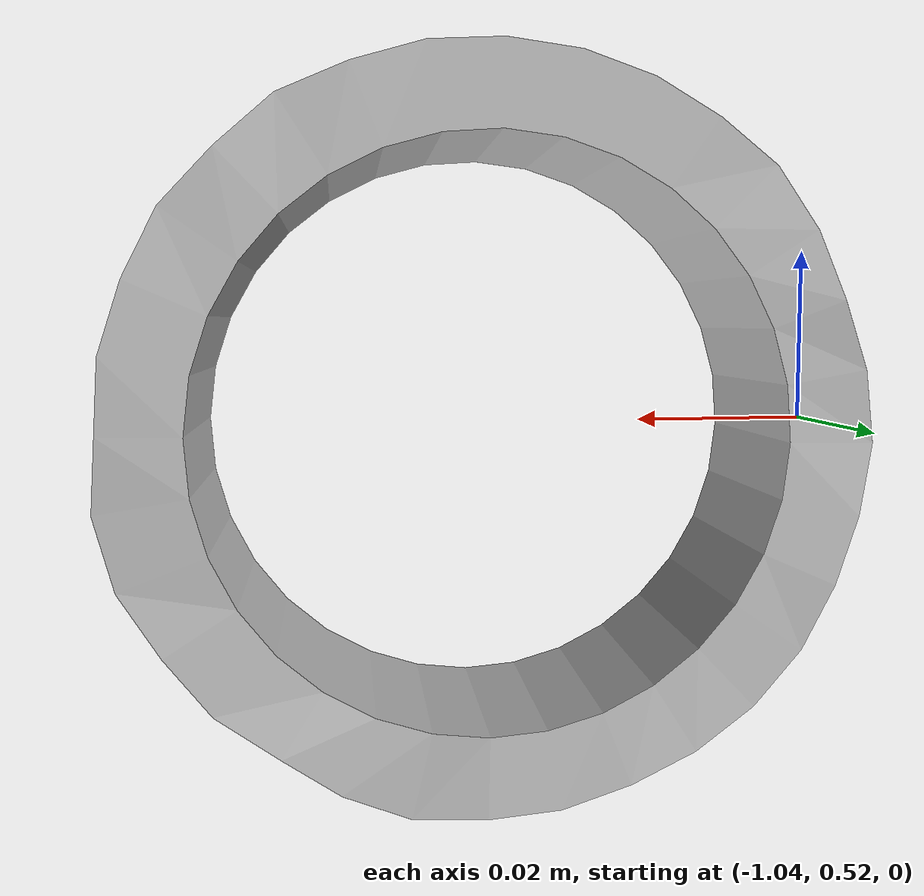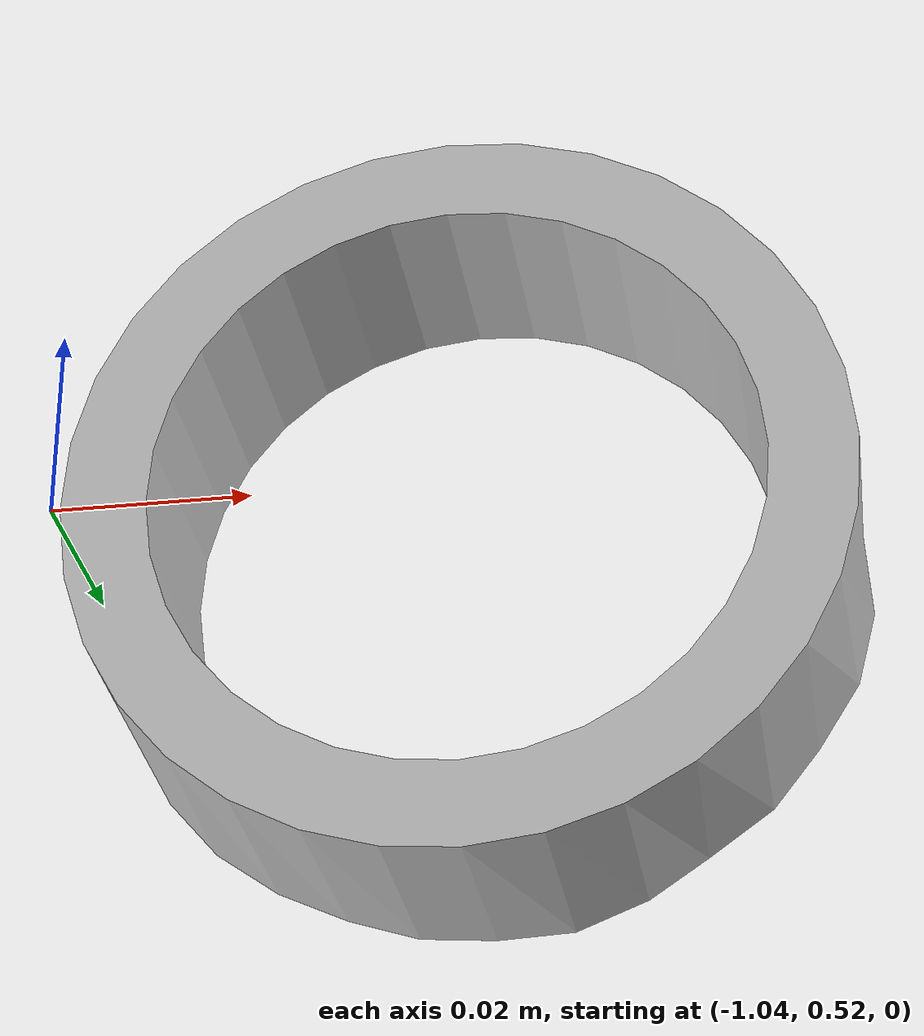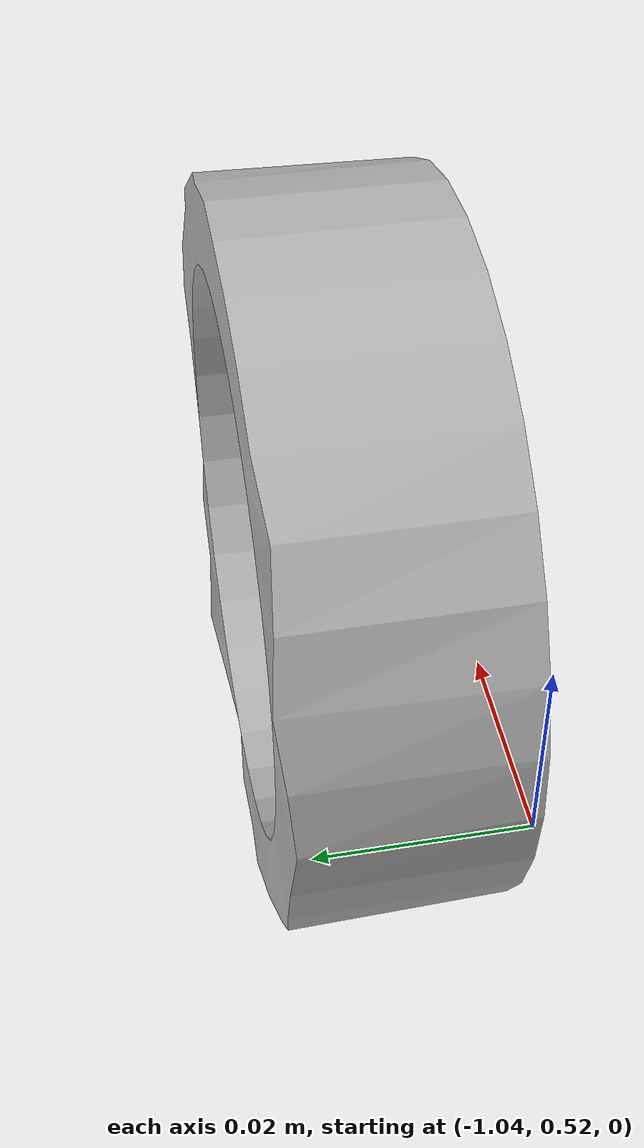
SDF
<sdf version='1.4'>
  <model name='tape3'>
    <link name='body'>
      <visual name='visual'>
        <geometry>
          <mesh>
            <uri>/home/daniel/FETCH_CORE/examples/toolbox/tape3.obj</uri>
            <scale>0.01 0.01 0.01</scale>
          </mesh>
        </geometry>
      </visual>
      <collision name='tape3'>
        <pose>-0.0001 0.011347266 0 0 0 0</pose>
        <geometry>
          <box>
            <size>0.078146368 0.024120973 0.077343548</size>
          </box>
        </geometry>
        <surface>
          <friction>
            <ode>
              <mu>50</mu>
              <mu2>100</mu2>
            </ode>
          </friction>
          <bounce/>
          <contact>
            <ode/>
          </contact>
        </surface>
        <max_contacts>10</max_contacts>
      </collision>
      <velocity_decay>
        <linear>0</linear>
        <angular>0</angular>
      </velocity_decay>
      <self_collide>0</self_collide>
      <inertial>
        <inertia>
          <ixx>7.6e-07</ixx>
          <ixy>0</ixy>
          <ixz>0</ixz>
          <iyy>1.052e-05</iyy>
          <iyz>0</iyz>
          <izz>1.107e-05</izz>
        </inertia>
        <mass>0.0125</mass>
      </inertial>
      <kinematic>0</kinematic>
      <gravity>1</gravity>
    </link>
    <pose>-1 0.519198 0 0 -0 0</pose>
    <static>0</static>
    </model>
</sdf>
